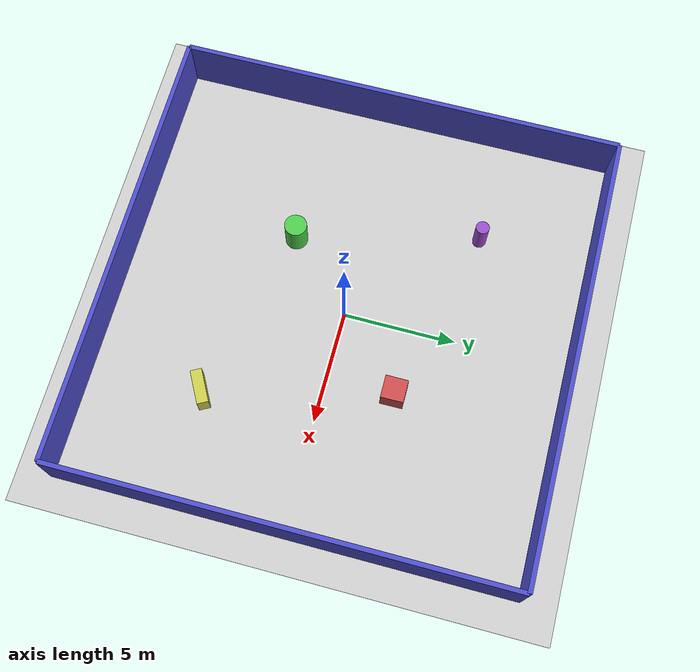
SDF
<?xml version="1.0"?>
<sdf version="1.6">
  <world name="carver_world">

    <include>
      <uri>model://ground_plane</uri>
    </include>

    <include>
      <uri>model://sun</uri>
    </include>

    <physics type="ode">
      <max_step_size>0.001</max_step_size>
      <real_time_factor>1</real_time_factor>
      <real_time_update_rate>1000</real_time_update_rate>
    </physics>

    <scene>
      <ambient>0.4 0.4 0.4 1</ambient>
      <background>0.7 0.7 0.7 1</background>
      <shadows>1</shadows>
    </scene>

    <model name="wall_north">
      <static>true</static>
      <pose>0 10 1.25 0 0 0</pose>
      <link name="link">
        <collision name="collision">
          <geometry>
            <box>
              <size>20 0.2 2.5</size>
            </box>
          </geometry>
        </collision>
        <visual name="visual">
          <geometry>
            <box>
              <size>20 0.2 2.5</size>
            </box>
          </geometry>
          <material>
            <ambient>0.3 0.3 0.8 1</ambient>
            <diffuse>0.3 0.3 0.8 1</diffuse>
          </material>
        </visual>
      </link>
    </model>

    <model name="wall_south">
      <static>true</static>
      <pose>0 -10 1.25 0 0 0</pose>
      <link name="link">
        <collision name="collision">
          <geometry>
            <box>
              <size>20 0.2 2.5</size>
            </box>
          </geometry>
        </collision>
        <visual name="visual">
          <geometry>
            <box>
              <size>20 0.2 2.5</size>
            </box>
          </geometry>
          <material>
            <ambient>0.3 0.3 0.8 1</ambient>
            <diffuse>0.3 0.3 0.8 1</diffuse>
          </material>
        </visual>
      </link>
    </model>

    <model name="wall_east">
      <static>true</static>
      <pose>10 0 1.25 0 0 0</pose>
      <link name="link">
        <collision name="collision">
          <geometry>
            <box>
              <size>0.2 20 2.5</size>
            </box>
          </geometry>
        </collision>
        <visual name="visual">
          <geometry>
            <box>
              <size>0.2 20 2.5</size>
            </box>
          </geometry>
          <material>
            <ambient>0.3 0.3 0.8 1</ambient>
            <diffuse>0.3 0.3 0.8 1</diffuse>
          </material>
        </visual>
      </link>
    </model>

    <model name="wall_west">
      <static>true</static>
      <pose>-10 0 1.25 0 0 0</pose>
      <link name="link">
        <collision name="collision">
          <geometry>
            <box>
              <size>0.2 20 2.5</size>
            </box>
          </geometry>
        </collision>
        <visual name="visual">
          <geometry>
            <box>
              <size>0.2 20 2.5</size>
            </box>
          </geometry>
          <material>
            <ambient>0.3 0.3 0.8 1</ambient>
            <diffuse>0.3 0.3 0.8 1</diffuse>
          </material>
        </visual>
      </link>
    </model>

    <model name="obstacle_box_1">
      <static>true</static>
      <pose>3 3 0.5 0 0 0</pose>
      <link name="link">
        <collision name="collision">
          <geometry>
            <box>
              <size>1 1 1</size>
            </box>
          </geometry>
        </collision>
        <visual name="visual">
          <geometry>
            <box>
              <size>1 1 1</size>
            </box>
          </geometry>
          <material>
            <ambient>0.8 0.3 0.3 1</ambient>
            <diffuse>0.8 0.3 0.3 1</diffuse>
          </material>
        </visual>
      </link>
    </model>

    <model name="obstacle_cylinder_1">
      <static>true</static>
      <pose>-3 -3 0.75 0 0 0</pose>
      <link name="link">
        <collision name="collision">
          <geometry>
            <cylinder>
              <radius>0.5</radius>
              <length>1.5</length>
            </cylinder>
          </geometry>
        </collision>
        <visual name="visual">
          <geometry>
            <cylinder>
              <radius>0.5</radius>
              <length>1.5</length>
            </cylinder>
          </geometry>
          <material>
            <ambient>0.3 0.8 0.3 1</ambient>
            <diffuse>0.3 0.8 0.3 1</diffuse>
          </material>
        </visual>
      </link>
    </model>

    <model name="obstacle_box_2">
      <static>true</static>
      <pose>5 -5 0.5 0 0 0.5</pose>
      <link name="link">
        <collision name="collision">
          <geometry>
            <box>
              <size>1.5 0.5 1</size>
            </box>
          </geometry>
        </collision>
        <visual name="visual">
          <geometry>
            <box>
              <size>1.5 0.5 1</size>
            </box>
          </geometry>
          <material>
            <ambient>0.8 0.8 0.3 1</ambient>
            <diffuse>0.8 0.8 0.3 1</diffuse>
          </material>
        </visual>
      </link>
    </model>

    <model name="obstacle_cylinder_2">
      <static>true</static>
      <pose>-5 5 0.75 0 0 0</pose>
      <link name="link">
        <collision name="collision">
          <geometry>
            <cylinder>
              <radius>0.3</radius>
              <length>1.5</length>
            </cylinder>
          </geometry>
        </collision>
        <visual name="visual">
          <geometry>
            <cylinder>
              <radius>0.3</radius>
              <length>1.5</length>
            </cylinder>
          </geometry>
          <material>
            <ambient>0.6 0.3 0.8 1</ambient>
            <diffuse>0.6 0.3 0.8 1</diffuse>
          </material>
        </visual>
      </link>
    </model>

  </world>
</sdf>
